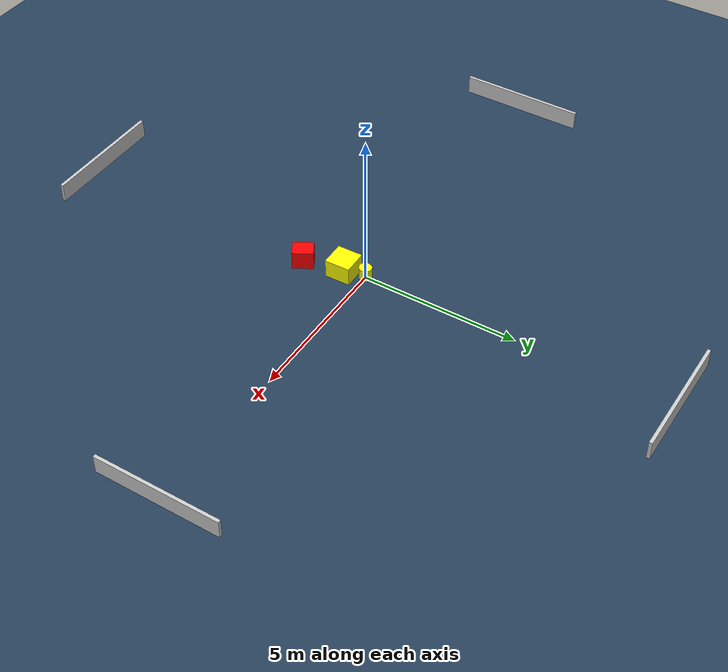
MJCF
<?xml version="1.0" ?>
<mujoco model="generated_environment">
  <option timestep="0.01" integrator="RK4" cone="elliptic"/>
  <default>
    <geom density="1"/>
  </default>
  <asset>
    <texture builtin="gradient" height="3072" name="skybox" rgb1="0.3 0.5 0.7" rgb2="0 0 0" type="skybox" width="512"/>
    <texture builtin="checker" height="300" name="groundplane" rgb1="0.2 0.3 0.4" rgb2="0.1 0.2 0.3" type="2d" width="300"/>
    <material name="groundplane" reflectance="0.2" texrepeat="5 5" texture="groundplane"/>
  </asset>
  <worldbody>
    <light dir="0 0 -1" directional="true" pos="0 0 1.5"/>
    <geom condim="3" friction="0.5 0.005 0.001" material="groundplane" name="floor" pos="0 0 0" size="0 0 0.05" type="plane"/>
    <body name="walls">
      <geom name="wall_1" condim="4" pos="-10.0 0.0 0.3" rgba="0.800000011920929 0.800000011920929 0.800000011920929 1.0" size="0.05 2.0 0.3" type="box"/>
      <geom name="wall_2" condim="4" pos="10.0 0.0 0.3" rgba="0.800000011920929 0.800000011920929 0.800000011920929 1.0" size="0.05 2.0 0.3" type="box"/>
      <geom name="wall_3" condim="4" pos="0.0 -10.0 0.3" rgba="0.800000011920929 0.800000011920929 0.800000011920929 1.0" size="2.0 0.05 0.3" type="box"/>
      <geom name="wall_4" condim="4" pos="0.0 10.0 0.3" rgba="0.800000011920929 0.800000011920929 0.800000011920929 1.0" size="2.0 0.05 0.3" type="box"/>
    </body>
    <body name="robot">
      <joint name="joint_x" type="slide" pos="0 0 0" axis="1 0 0"/>
      <joint name="joint_y" type="slide" pos="0 0 0" axis="0 1 0"/>
      <geom name="robot" type="cylinder" pos="0.0 0.0 0.2" size="0.2 0.2 0.0" mass="5.0" friction="1.0 0.005 0.0001" condim="4" rgba="1.0 1.0 0.0 1.0"/>
    </body>
    <body name="obstacle_1_movable">
      <geom name="obstacle_1_movable" condim="4" pos="0.17556794024602682 -0.6550017763990909 0.3" euler="0 0 91.41375590136545" friction="0.0 0.005 0.001" rgba="1.0 1.0 0.0 1.0" size="0.40347153027023763 0.3867794802922129 0.3" type="box" mass="0.1"/>
      <joint type="free"/>
    </body>
    <body name="obstacle_2_static">
      <geom name="obstacle_2_static" condim="4" pos="0.44752809261710186 -1.9230877534788173 0.3" euler="0 0 300.207885057969" friction="0.0 0.005 0.001" rgba="1.0 0.0 0.0 1.0" size="0.32813468729292605 0.2579016149465035 0.3" type="box"/>
    </body>
  </worldbody>
  <actuator>
    <motor name="actuator_x" joint="joint_x" gear="1" ctrlrange="-1 1"/>
    <motor name="actuator_y" joint="joint_y" gear="1" ctrlrange="-1 1"/>
  </actuator>
</mujoco>
